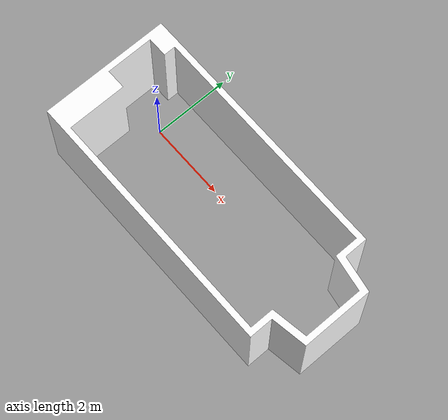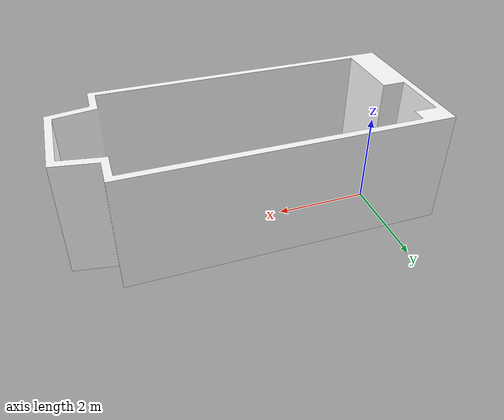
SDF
<?xml version="1.0" ?>
<sdf version="1.5">
  <model name="prof_office">
    <link name="link">
      <pose>0 0 0 0 0 0</pose>
      <collision name="collision">
        <geometry>
          <mesh>
            <uri>model://prof_office/meshes/walls.dae</uri>
          </mesh>
        </geometry>
      </collision>
      <visual name="visual">
        <geometry>
          <mesh>
            <uri>model://prof_office/meshes/walls.dae</uri>
          </mesh>
        </geometry>
      </visual>
    </link>
    <static>1</static>
  </model>
</sdf>
